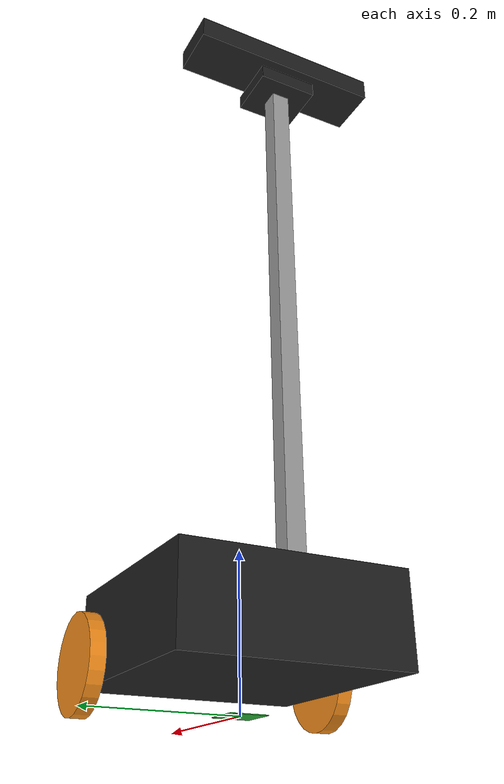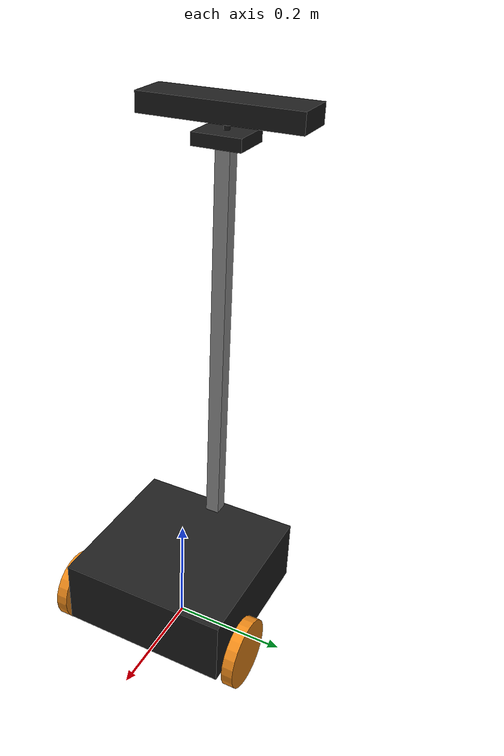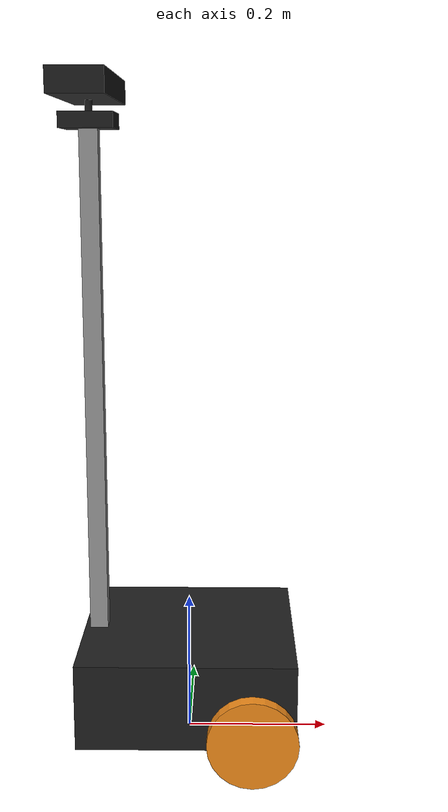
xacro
<?xml version="1.0"?>

<robot name="box_robot" xmlns:xacro="http://ros.org/wiki/xacro">

   <!-- Define a number of dimensions using properties -->
   <property name="torso_offset_x" value="-0.13" />
   <property name="torso_offset_y" value="0.0" />
   <property name="torso_offset_z" value="0.41" />

   <property name="camera_offset_x" value="0.0" />
   <property name="camera_offset_y" value="0.0" />
   <property name="camera_offset_z" value="0.3605" />

   <!-- include all component files -->
   <xacro:include filename="$(find rbx2_description)/urdf/materials.urdf.xacro" />
   <xacro:include filename="$(find rbx2_description)/urdf/box_robot/base.urdf.xacro" />
   <xacro:include filename="$(find rbx2_description)/urdf/box_robot/torso.urdf.xacro" />
   <xacro:include filename="$(find rbx2_description)/urdf/box_robot/kinect_box.urdf.xacro" />

   <!-- Add the base and wheels -->
   <base name="base" color="Black"/>

   <!-- Attach the torso -->
   <torso name="torso" parent="base" color="Grey">
      <origin xyz="${torso_offset_x} ${torso_offset_y} ${torso_offset_z}" rpy="0 0 0" />
   </torso>

   <!-- Attach the camera -->
   <camera name="camera" parent="torso" color="Black">
      <origin xyz="${camera_offset_x} ${camera_offset_y} ${camera_offset_z}" rpy="0 0 0" />
   </camera>

</robot>

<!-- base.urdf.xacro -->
<robot name="base" xmlns:xacro="http://ros.org/wiki/xacro">

  <!-- Define a number of dimensions using properties -->
  <property name="base_size_x" value="0.30" />
  <property name="base_size_y" value="0.30" />
  <property name="base_size_z" value="0.12" />
  <property name="wheel_length" value="0.02032" />
  <property name="wheel_radius" value="0.06191" />
  <property name="wheel_offset_x" value="0.09" />
  <property name="wheel_offset_y" value="0.17" />
  <property name="wheel_offset_z" value="-0.038" />

  <property name="PI" value="3.1415" />

  <!-- define a wheel -->
  <macro name="wheel" params="suffix parent reflect color">
    <joint name="${parent}_${suffix}_wheel_joint" type="continuous">
      <axis xyz="0 0 1" />
      <limit effort="100" velocity="100"/>
      <safety_controller k_velocity="10" />
      <origin xyz="${wheel_offset_x} ${reflect*wheel_offset_y} ${wheel_offset_z}" rpy="${reflect*PI/2} 0 0" />
      <parent link="${parent}_link"/>
      <child link="${parent}_${suffix}_wheel_link"/>
    </joint>
    <link name="${parent}_${suffix}_wheel_link">
      <visual>
        <origin xyz="0 0 0" rpy="0 0 0" />
        <geometry>
          <cylinder radius="${wheel_radius}" length="${wheel_length}"/>
        </geometry>
        <material name="${color}" />
      </visual>
    </link>
  </macro>

  <!-- The base xacro macro -->
  <macro name="base" params="name color">
    <link name="${name}_link">
      <visual>
        <origin xyz="0 0 0" rpy="0 0 0" />
        <geometry>
          <box size="${base_size_x} ${base_size_y} ${base_size_z}" />
        </geometry>
        <material name="${color}" />
      </visual>
      <collision>
        <origin xyz="0 0 0" rpy="0 0 0" />
        <geometry>
          <box size="${base_size_x} ${wheel_offset_y*2 + wheel_length} ${base_size_z}" />
        </geometry>
      </collision>
    </link>
  </macro>

  <link name="base_footprint">
      <visual>
        <origin xyz="0 0 0" rpy="0 0 0" />
        <geometry>
          <box size="0.05 0.05 0.001" />
        </geometry>
        <material name="TransparentGreen" />
      </visual>
  </link>

  <joint name="base_joint" type="fixed">
    <origin xyz="0 0 ${base_size_z/2 - wheel_offset_z}" rpy="0 0 0" />
    <parent link="base_footprint"/>
    <child link="base_link" />
  </joint>

   <!-- Add the drive wheels -->
   <wheel parent="base" suffix="l" reflect="1" color="Orange"/>
   <wheel parent="base" suffix="r" reflect="-1" color="Orange"/>

</robot>

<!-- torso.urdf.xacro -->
<robot name="torso" xmlns:xacro="http://ros.org/wiki/xacro">

  <!-- Define a number of dimensions using properties -->
  <property name="torso_size_x" value="0.0254" />
  <property name="torso_size_y" value="0.0254" />
  <property name="torso_size_z" value="0.7" />

  <!-- Define the torso -->
  <macro name="torso" params="parent name color *origin">
    <joint name="${parent}_${name}_joint" type="fixed">
      <xacro:insert_block name="origin" />
      <parent link="${parent}_link"/>
      <child link="${name}_link"/>
    </joint>
    <link name="${name}_link">
      <visual>
        <origin xyz="0 0 0" rpy="0 0 0" />
        <geometry>
          <box size="${torso_size_x} ${torso_size_y} ${torso_size_z}" />
        </geometry>
        <material name="${color}" />
      </visual>
      <collision>
        <origin xyz="0 0 0" rpy="0 0 0" />
        <geometry>
          <box size="${torso_size_x} ${torso_size_y} ${torso_size_z}" />
        </geometry>
      </collision>
    </link>
  </macro>

</robot>

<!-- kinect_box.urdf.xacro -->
<robot name="kinect" xmlns:xacro="http://ros.org/wiki/xacro">

   <!-- Define a number of dimensions using properties -->
   <property name="kinect_body_x" value="0.07271" />
   <property name="kinect_body_y" value="0.27794" />
   <property name="kinect_body_z" value="0.033" />

   <property name="kinect_base_x" value="0.072" />
   <property name="kinect_base_y" value="0.085" />
   <property name="kinect_base_z" value="0.021" />

   <property name="kinect_base_post_height" value="0.016" />
   <property name="kinect_base_post_radius" value="0.005" />

   <property name="PI" value="3.1415" />

   <!-- Define a box-shaped camera link for the Kinect -->
   <macro name="camera" params="parent name color *origin">
      <joint name="${parent}_${name}_joint" type="fixed">
         <xacro:insert_block name="origin" />
         <parent link="${parent}_link"/>
         <child link="${name}_base_link"/>
      </joint>

      <link name="${name}_base_link">
         <visual>
            <origin xyz="0 0.0 0.0" rpy="0 0 0" />
            <geometry>
               <box size="${kinect_base_x} ${kinect_base_y} ${kinect_base_z}"/>
            </geometry>
            <material name="${color}" />
         </visual>
         <collision>
            <origin xyz="0 0 0" rpy="0 0 0" />
            <geometry>
               <box size="${kinect_base_x} ${kinect_base_y} ${kinect_base_z}"/>
            </geometry>
         </collision>
      </link>

      <joint name="${name}_base_post_joint" type="fixed">
         <origin xyz="0 0 ${(kinect_base_z + kinect_base_post_height)/2}" rpy="0 0 0" />
         <parent link="${name}_base_link" />
         <child link="${name}_base_post_link" />
      </joint>

      <link name="${name}_base_post_link">
         <visual>
            <origin xyz="0 0 0" rpy="0 0 0" />
            <geometry>
               <cylinder radius="${kinect_base_post_radius}" length="${kinect_base_post_height}"/>
            </geometry>
            <material name="${color}" />
         </visual>
         <collision>
            <origin xyz="0 0 0" rpy="0 0 0" />
            <geometry>
               <cylinder radius="${kinect_base_post_radius}" length="${kinect_base_post_height}"/>
            </geometry>
         </collision>
      </link>

      <joint name="${name}_base_joint" type="fixed">
         <origin xyz="0 0 ${(kinect_base_post_height + kinect_body_z)/2}" rpy="0 0 0" />
         <parent link="${name}_base_post_link" />
         <child link="${name}_link" />
      </joint>

      <link name="${name}_link">
         <visual>
            <origin xyz="0 0 0" rpy="0 0 0" />
            <geometry>
               <box size="${kinect_body_x} ${kinect_body_y} ${kinect_body_z}"/>
            </geometry>
            <material name="${color}" />
         </visual>
         <collision>
            <origin xyz="0 0 0" rpy="0 0 0" />
            <geometry>
               <box size="${kinect_body_x} ${kinect_body_y} ${kinect_body_z}"/>
            </geometry>
         </collision>
      </link>

      <joint name="${name}_depth_joint" type="fixed">
         <origin xyz="0 0.0125 0" rpy="0 0 0" />
          <parent link="${name}_link" />
          <child link="${name}_depth_frame" />
      </joint>

      <link name="${name}_depth_frame">
      <inertial>
         <mass value="0.000001" />
         <origin xyz="0 0 0" />
         <inertia ixx="0.0001" ixy="0.0" ixz="0.0"
            iyy="0.0001" iyz="0.0"
            izz="0.0001" />
         </inertial>
      </link>

      <joint name="${name}_depth_optical_joint" type="fixed">
         <origin xyz="0 0 0" rpy="${-PI/2} 0 ${-PI/2}" />
         <parent link="${name}_depth_frame" />
         <child link="${name}_depth_optical_frame" />
      </joint>

      <link name="${name}_depth_optical_frame">
         <inertial>
            <mass value="0.000001" />
            <origin xyz="0 0 0" />
            <inertia ixx="0.0001" ixy="0.0" ixz="0.0"
               iyy="0.0001" iyz="0.0"
               izz="0.0001" />
         </inertial>
      </link>

      <joint name="${name}_rgb_joint" type="fixed">
         <origin xyz="0 -0.0125 0" rpy="0 0 0" />
         <parent link="${name}_link" />
         <child link="${name}_rgb_frame" />
      </joint>

      <link name="${name}_rgb_frame">
         <inertial>
         <mass value="0.000001" />
         <origin xyz="0 0 0" />
         <inertia ixx="0.0001" ixy="0.0" ixz="0.0"
            iyy="0.0001" iyz="0.0"
            izz="0.0001" />
         </inertial>
      </link>

      <joint name="${name}_rgb_optical_joint" type="fixed">
         <origin xyz="0 0 0" rpy="${-PI/2} 0 ${-PI/2}" />
         <parent link="${name}_rgb_frame" />
         <child link="${name}_rgb_optical_frame" />
      </joint>

      <link name="${name}_rgb_optical_frame">
         <inertial>
            <mass value="0.000001" />
            <origin xyz="0 0 0" />
            <inertia ixx="0.0001" ixy="0.0" ixz="0.0"
               iyy="0.0001" iyz="0.0"
               izz="0.0001" />
         </inertial>
      </link>

   </macro>

</robot>
